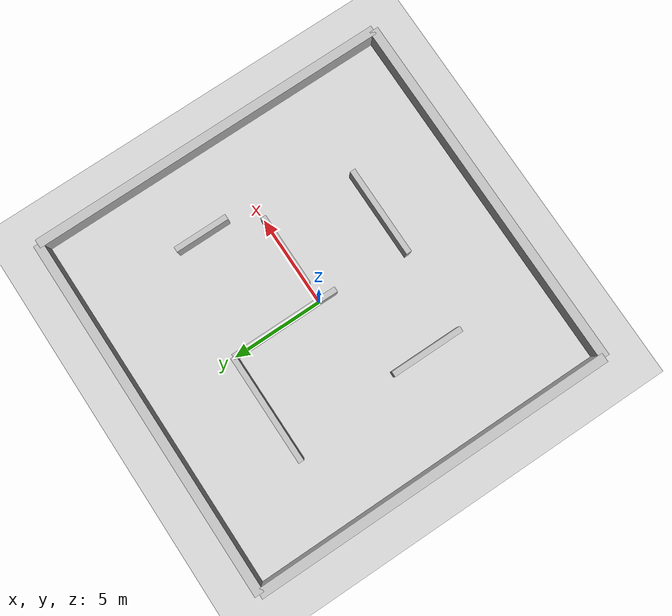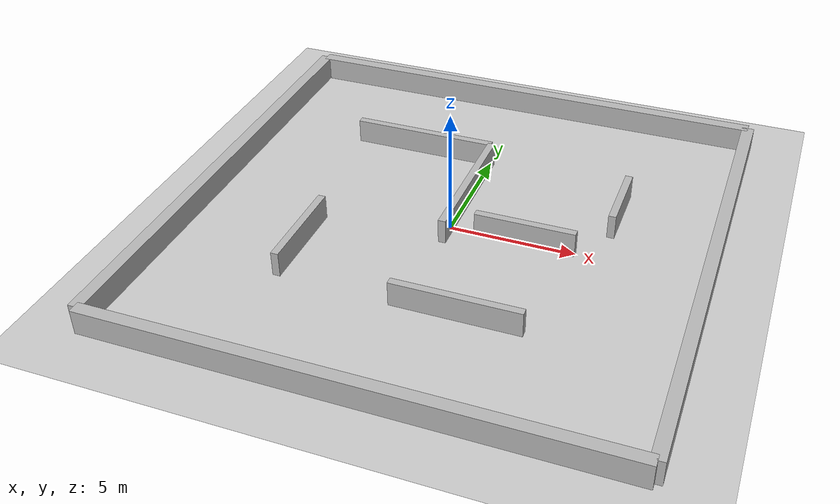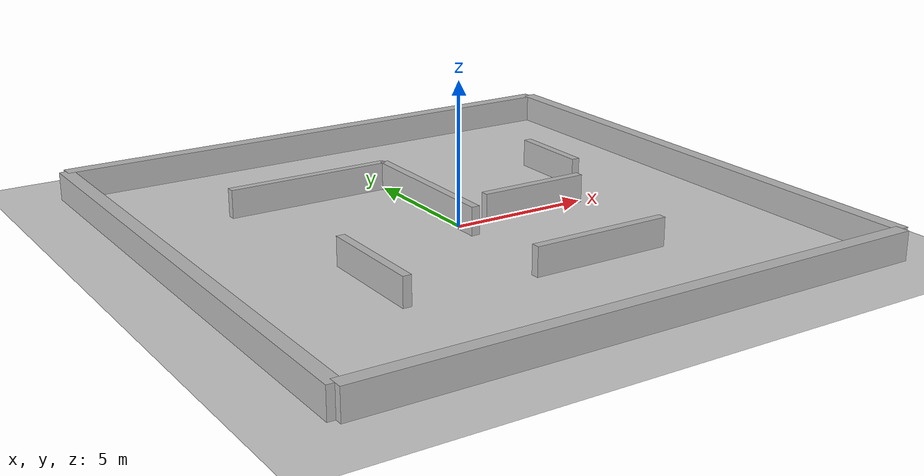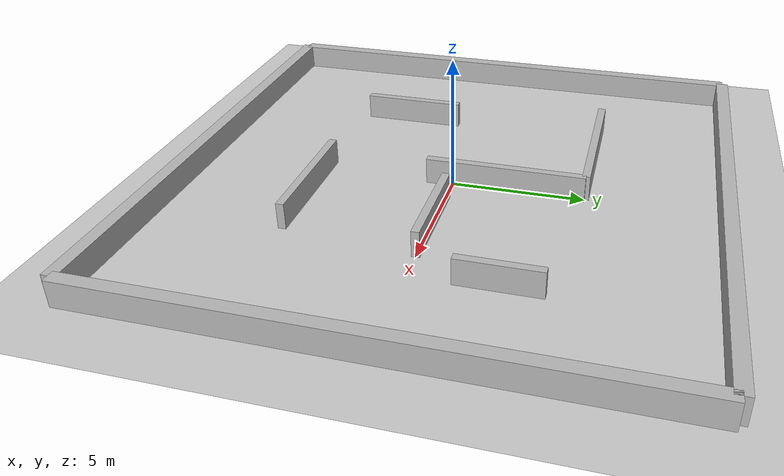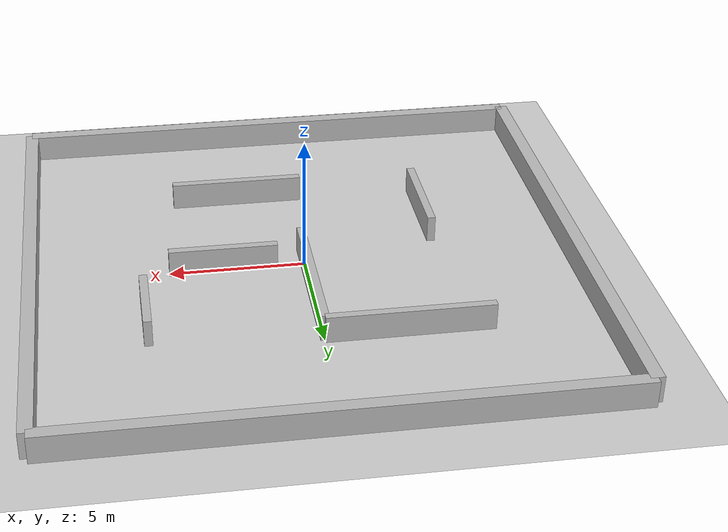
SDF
<?xml version="1.0" ?>
<sdf version="1.6">
  <world name="big_maze_world">

    <!-- Ground and lighting -->
    <include>
      <uri>model://ground_plane</uri>
    </include>
    <include>
      <uri>model://sun</uri>
    </include>

    <!-- Maze structure -->
    <model name="maze">
      <static>true</static>
      <link name="maze_link">

        <!-- MATERIAL -->
        <visual name="maze_material">
          <geometry><box><size>0.1 0.1 0.1</size></box></geometry>
          <material>
            <script>
              <uri>file://media/materials/scripts/gazebo.material</uri>
              <name>Gazebo/Grey</name>
            </script>
          </material>
        </visual>

        <!-- ====== BOUNDARY WALLS ====== -->
        <!-- Top -->
        <collision name="wall_top_collision">
          <geometry><box><size>20 0.5 1</size></box></geometry>
          <pose>0 10 0.5 0 0 0</pose>
        </collision>
        <visual name="wall_top_visual">
          <geometry><box><size>20 0.5 1</size></box></geometry>
          <pose>0 10 0.5 0 0 0</pose>
        </visual>

        <!-- Bottom -->
        <collision name="wall_bottom_collision">
          <geometry><box><size>20 0.5 1</size></box></geometry>
          <pose>0 -10 0.5 0 0 0</pose>
        </collision>
        <visual name="wall_bottom_visual">
          <geometry><box><size>20 0.5 1</size></box></geometry>
          <pose>0 -10 0.5 0 0 0</pose>
        </visual>

        <!-- Right -->
        <collision name="wall_right_collision">
          <geometry><box><size>0.5 20 1</size></box></geometry>
          <pose>10 0 0.5 0 0 0</pose>
        </collision>
        <visual name="wall_right_visual">
          <geometry><box><size>0.5 20 1</size></box></geometry>
          <pose>10 0 0.5 0 0 0</pose>
        </visual>

        <!-- Left -->
        <collision name="wall_left_collision">
          <geometry><box><size>0.5 20 1</size></box></geometry>
          <pose>-10 0 0.5 0 0 0</pose>
        </collision>
        <visual name="wall_left_visual">
          <geometry><box><size>0.5 20 1</size></box></geometry>
          <pose>-10 0 0.5 0 0 0</pose>
        </visual>

        <!-- ====== INTERNAL MAZE WALLS (6 total) ====== -->

        <!-- Horizontal Wall 1 -->
        <collision name="inner_wall_1_collision">
          <geometry><box><size>6 0.3 1</size></box></geometry>
          <pose>-3 5 0.5 0 0 0</pose>
        </collision>
        <visual name="inner_wall_1_visual">
          <geometry><box><size>6 0.3 1</size></box></geometry>
          <pose>-3 5 0.5 0 0 0</pose>
        </visual>

        <!-- Vertical Wall 2 -->
        <collision name="inner_wall_2_collision">
          <geometry><box><size>0.3 6 1</size></box></geometry>
          <pose>0 2 0.5 0 0 0</pose>
        </collision>
        <visual name="inner_wall_2_visual">
          <geometry><box><size>0.3 6 1</size></box></geometry>
          <pose>0 2 0.5 0 0 0</pose>
        </visual>

        <!-- Horizontal Wall 3 -->
        <collision name="inner_wall_3_collision">
          <geometry><box><size>4 0.3 1</size></box></geometry>
          <pose>3 0 0.5 0 0 0</pose>
        </collision>
        <visual name="inner_wall_3_visual">
          <geometry><box><size>4 0.3 1</size></box></geometry>
          <pose>3 0 0.5 0 0 0</pose>
        </visual>

        <!-- Vertical Wall 4 -->
        <collision name="inner_wall_4_collision">
          <geometry><box><size>0.3 4 1</size></box></geometry>
          <pose>-5 -3 0.5 0 0 0</pose>
        </collision>
        <visual name="inner_wall_4_visual">
          <geometry><box><size>0.3 4 1</size></box></geometry>
          <pose>-5 -3 0.5 0 0 0</pose>
        </visual>

        <!-- Horizontal Wall 5 -->
        <collision name="inner_wall_5_collision">
          <geometry><box><size>5 0.3 1</size></box></geometry>
          <pose>2 -5 0.5 0 0 0</pose>
        </collision>
        <visual name="inner_wall_5_visual">
          <geometry><box><size>5 0.3 1</size></box></geometry>
          <pose>2 -5 0.5 0 0 0</pose>
        </visual>

        <!-- Vertical Wall 6 -->
        <collision name="inner_wall_6_collision">
          <geometry><box><size>0.3 3 1</size></box></geometry>
          <pose>6 3 0.5 0 0 0</pose>
        </collision>
        <visual name="inner_wall_6_visual">
          <geometry><box><size>0.3 3 1</size></box></geometry>
          <pose>6 3 0.5 0 0 0</pose>
        </visual>

      </link>
    </model>

  </world>
</sdf>
